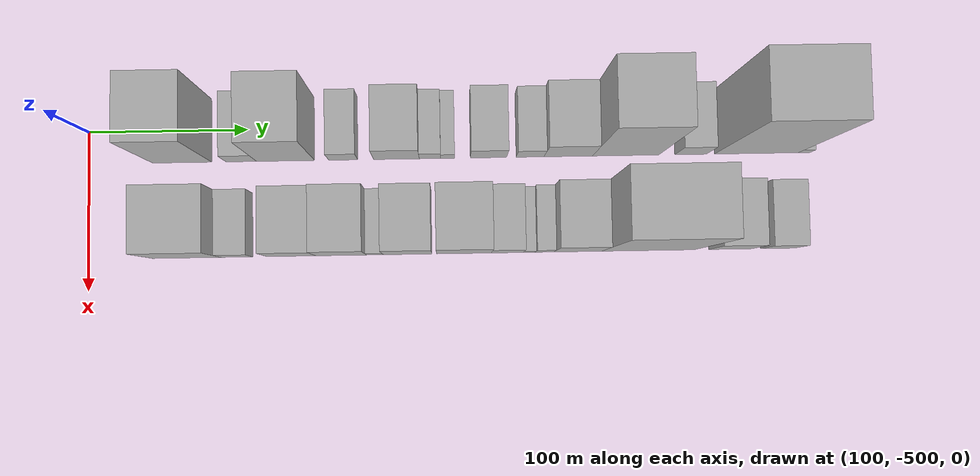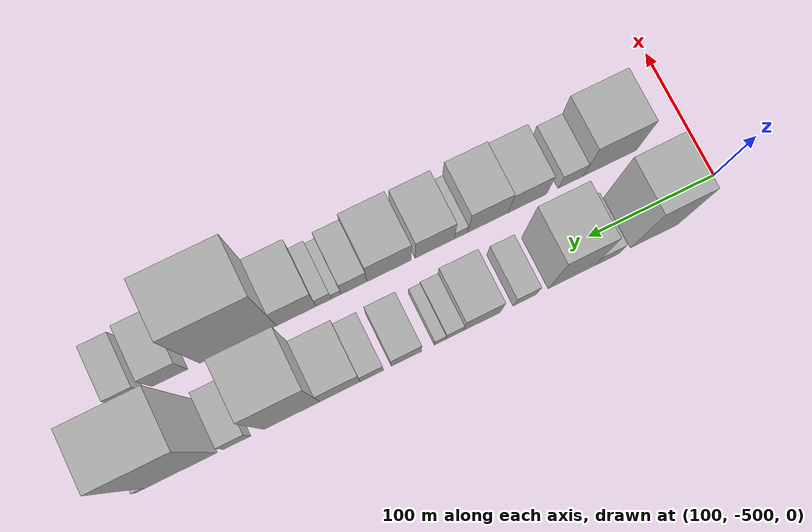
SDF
<sdf version="1.6">
 <world name="default">
  <model name="building_1">
   <static>1</static>
   <pose>100.0000 -441.4001 0 0.000000 0.000000 0.000000</pose>
   <link name="link">
    <pose>0 0 55.50 0 0 0</pose>
    <collision name="collision"><geometry><box><size>40.0000 37.1998 111.0000</size></box></geometry></collision>
    <visual name="visual">
     <cast_shadows>0</cast_shadows>
     <geometry><box><size>40.0000 37.1998 111.0000</size></box></geometry>
     <material>
      <script>
       <uri>model://HANNAS_wall/materials/scripts</uri>
       <uri>model://HANNAS_wall/materials/textures</uri>
       <name>vrc/HANNAS_wall</name>
      </script>
     </material>
    </visual>
   </link>
  </model>
  <model name="building_2">
   <static>1</static>
   <pose>100.0000 -404.2057 0 0.000000 0.000000 0.000000</pose>
   <link name="link">
    <pose>0 0 16.50 0 0 0</pose>
    <collision name="collision"><geometry><box><size>40.0000 19.1890 33.0000</size></box></geometry></collision>
    <visual name="visual">
     <cast_shadows>0</cast_shadows>
     <geometry><box><size>40.0000 19.1890 33.0000</size></box></geometry>
     <material>
      <script>
       <uri>model://HANNAS_wall/materials/scripts</uri>
       <uri>model://HANNAS_wall/materials/textures</uri>
       <name>vrc/HANNAS_wall</name>
      </script>
     </material>
    </visual>
   </link>
  </model>
  <model name="building_3">
   <static>1</static>
   <pose>100.0000 -376.3711 0 0.000000 0.000000 0.000000</pose>
   <link name="link">
    <pose>0 0 51.00 0 0 0</pose>
    <collision name="collision"><geometry><box><size>40.0000 36.4802 102.0000</size></box></geometry></collision>
    <visual name="visual">
     <cast_shadows>0</cast_shadows>
     <geometry><box><size>40.0000 36.4802 102.0000</size></box></geometry>
     <material>
      <script>
       <uri>model://HANNAS_wall/materials/scripts</uri>
       <uri>model://HANNAS_wall/materials/textures</uri>
       <name>vrc/HANNAS_wall</name>
      </script>
     </material>
    </visual>
   </link>
  </model>
  <model name="building_4">
   <static>1</static>
   <pose>100.0000 -340.0315 0 0.000000 0.000000 0.000000</pose>
   <link name="link">
    <pose>0 0 16.50 0 0 0</pose>
    <collision name="collision"><geometry><box><size>40.0000 18.1991 33.0000</size></box></geometry></collision>
    <visual name="visual">
     <cast_shadows>0</cast_shadows>
     <geometry><box><size>40.0000 18.1991 33.0000</size></box></geometry>
     <material>
      <script>
       <uri>model://HANNAS_wall/materials/scripts</uri>
       <uri>model://HANNAS_wall/materials/textures</uri>
       <name>vrc/HANNAS_wall</name>
      </script>
     </material>
    </visual>
   </link>
  </model>
  <model name="building_5">
   <static>1</static>
   <pose>100.0000 -306.6092 0 0.000000 0.000000 0.000000</pose>
   <link name="link">
    <pose>0 0 24.00 0 0 0</pose>
    <collision name="collision"><geometry><box><size>40.0000 28.6457 48.0000</size></box></geometry></collision>
    <visual name="visual">
     <cast_shadows>0</cast_shadows>
     <geometry><box><size>40.0000 28.6457 48.0000</size></box></geometry>
     <material>
      <script>
       <uri>model://HANNAS_wall/materials/scripts</uri>
       <uri>model://HANNAS_wall/materials/textures</uri>
       <name>vrc/HANNAS_wall</name>
      </script>
     </material>
    </visual>
   </link>
  </model>
  <model name="building_6">
   <static>1</static>
   <pose>100.0000 -285.5846 0 0.000000 0.000000 0.000000</pose>
   <link name="link">
    <pose>0 0 13.50 0 0 0</pose>
    <collision name="collision"><geometry><box><size>40.0000 13.4035 27.0000</size></box></geometry></collision>
    <visual name="visual">
     <cast_shadows>0</cast_shadows>
     <geometry><box><size>40.0000 13.4035 27.0000</size></box></geometry>
     <material>
      <script>
       <uri>model://HANNAS_wall/materials/scripts</uri>
       <uri>model://HANNAS_wall/materials/textures</uri>
       <name>vrc/HANNAS_wall</name>
      </script>
     </material>
    </visual>
   </link>
  </model>
  <model name="building_7">
   <static>1</static>
   <pose>100.0000 -274.5403 0 0.000000 0.000000 0.000000</pose>
   <link name="link">
    <pose>0 0 10.50 0 0 0</pose>
    <collision name="collision"><geometry><box><size>40.0000 8.6851 21.0000</size></box></geometry></collision>
    <visual name="visual">
     <cast_shadows>0</cast_shadows>
     <geometry><box><size>40.0000 8.6851 21.0000</size></box></geometry>
     <material>
      <script>
       <uri>model://HANNAS_wall/materials/scripts</uri>
       <uri>model://HANNAS_wall/materials/textures</uri>
       <name>vrc/HANNAS_wall</name>
      </script>
     </material>
    </visual>
   </link>
  </model>
  <model name="building_8">
   <static>1</static>
   <pose>100.0000 -248.8001 0 0.000000 0.000000 0.000000</pose>
   <link name="link">
    <pose>0 0 19.50 0 0 0</pose>
    <collision name="collision"><geometry><box><size>40.0000 22.7953 39.0000</size></box></geometry></collision>
    <visual name="visual">
     <cast_shadows>0</cast_shadows>
     <geometry><box><size>40.0000 22.7953 39.0000</size></box></geometry>
     <material>
      <script>
       <uri>model://HANNAS_wall/materials/scripts</uri>
       <uri>model://HANNAS_wall/materials/textures</uri>
       <name>vrc/HANNAS_wall</name>
      </script>
     </material>
    </visual>
   </link>
  </model>
  <model name="building_9">
   <static>1</static>
   <pose>100.0000 -222.6731 0 0.000000 0.000000 0.000000</pose>
   <link name="link">
    <pose>0 0 16.50 0 0 0</pose>
    <collision name="collision"><geometry><box><size>40.0000 17.4588 33.0000</size></box></geometry></collision>
    <visual name="visual">
     <cast_shadows>0</cast_shadows>
     <geometry><box><size>40.0000 17.4588 33.0000</size></box></geometry>
     <material>
      <script>
       <uri>model://HANNAS_wall/materials/scripts</uri>
       <uri>model://HANNAS_wall/materials/textures</uri>
       <name>vrc/HANNAS_wall</name>
      </script>
     </material>
    </visual>
   </link>
  </model>
  <model name="building_10">
   <static>1</static>
   <pose>100.0000 -198.6619 0 0.000000 0.000000 0.000000</pose>
   <link name="link">
    <pose>0 0 27.00 0 0 0</pose>
    <collision name="collision"><geometry><box><size>40.0000 30.5637 54.0000</size></box></geometry></collision>
    <visual name="visual">
     <cast_shadows>0</cast_shadows>
     <geometry><box><size>40.0000 30.5637 54.0000</size></box></geometry>
     <material>
      <script>
       <uri>model://HANNAS_wall/materials/scripts</uri>
       <uri>model://HANNAS_wall/materials/textures</uri>
       <name>vrc/HANNAS_wall</name>
      </script>
     </material>
    </visual>
   </link>
  </model>
  <model name="building_11">
   <static>1</static>
   <pose>100.0000 -162.4449 0 0.000000 0.000000 0.000000</pose>
   <link name="link">
    <pose>0 0 69.00 0 0 0</pose>
    <collision name="collision"><geometry><box><size>40.0000 41.8702 138.0000</size></box></geometry></collision>
    <visual name="visual">
     <cast_shadows>0</cast_shadows>
     <geometry><box><size>40.0000 41.8702 138.0000</size></box></geometry>
     <material>
      <script>
       <uri>model://HANNAS_wall/materials/scripts</uri>
       <uri>model://HANNAS_wall/materials/textures</uri>
       <name>vrc/HANNAS_wall</name>
      </script>
     </material>
    </visual>
   </link>
  </model>
  <model name="building_12">
   <static>1</static>
   <pose>100.0000 -121.5482 0 0.000000 0.000000 0.000000</pose>
   <link name="link">
    <pose>0 0 19.50 0 0 0</pose>
    <collision name="collision"><geometry><box><size>40.0000 19.9233 39.0000</size></box></geometry></collision>
    <visual name="visual">
     <cast_shadows>0</cast_shadows>
     <geometry><box><size>40.0000 19.9233 39.0000</size></box></geometry>
     <material>
      <script>
       <uri>model://HANNAS_wall/materials/scripts</uri>
       <uri>model://HANNAS_wall/materials/textures</uri>
       <name>vrc/HANNAS_wall</name>
      </script>
     </material>
    </visual>
   </link>
  </model>
  <model name="building_13">
   <static>1</static>
   <pose>100.0000 -80.1725 0 0.000000 0.000000 0.000000</pose>
   <link name="link">
    <pose>0 0 78.00 0 0 0</pose>
    <collision name="collision"><geometry><box><size>40.0000 52.8280 156.0000</size></box></geometry></collision>
    <visual name="visual">
     <cast_shadows>0</cast_shadows>
     <geometry><box><size>40.0000 52.8280 156.0000</size></box></geometry>
     <material>
      <script>
       <uri>model://HANNAS_wall/materials/scripts</uri>
       <uri>model://HANNAS_wall/materials/textures</uri>
       <name>vrc/HANNAS_wall</name>
      </script>
     </material>
    </visual>
   </link>
  </model>
  <model name="building_14">
   <static>1</static>
   <pose>100.0000 -50.0257 0 0.000000 0.000000 0.000000</pose>
   <link name="link">
    <pose>0 0 7.50 0 0 0</pose>
    <collision name="collision"><geometry><box><size>40.0000 7.4655 15.0000</size></box></geometry></collision>
    <visual name="visual">
     <cast_shadows>0</cast_shadows>
     <geometry><box><size>40.0000 7.4655 15.0000</size></box></geometry>
     <material>
      <script>
       <uri>model://HANNAS_wall/materials/scripts</uri>
       <uri>model://HANNAS_wall/materials/textures</uri>
       <name>vrc/HANNAS_wall</name>
      </script>
     </material>
    </visual>
   </link>
  </model>
  <model name="building_27">
   <static>1</static>
   <pose>160.0000 -438.4941 0 0.000000 0.000000 0.000000</pose>
   <link name="link">
    <pose>0 0 36.00 0 0 0</pose>
    <collision name="collision"><geometry><box><size>40.0000 43.0119 72.0000</size></box></geometry></collision>
    <visual name="visual">
     <cast_shadows>0</cast_shadows>
     <geometry><box><size>40.0000 43.0119 72.0000</size></box></geometry>
     <material>
      <script>
       <uri>model://HANNAS_wall/materials/scripts</uri>
       <uri>model://HANNAS_wall/materials/textures</uri>
       <name>vrc/HANNAS_wall</name>
      </script>
     </material>
    </visual>
   </link>
  </model>
  <model name="building_28">
   <static>1</static>
   <pose>160.0000 -407.1371 0 0.000000 0.000000 0.000000</pose>
   <link name="link">
    <pose>0 0 16.50 0 0 0</pose>
    <collision name="collision"><geometry><box><size>40.0000 19.7021 33.0000</size></box></geometry></collision>
    <visual name="visual">
     <cast_shadows>0</cast_shadows>
     <geometry><box><size>40.0000 19.7021 33.0000</size></box></geometry>
     <material>
      <script>
       <uri>model://HANNAS_wall/materials/scripts</uri>
       <uri>model://HANNAS_wall/materials/textures</uri>
       <name>vrc/HANNAS_wall</name>
      </script>
     </material>
    </visual>
   </link>
  </model>
  <model name="building_29">
   <static>1</static>
   <pose>160.0000 -373.0233 0 0.000000 0.000000 0.000000</pose>
   <link name="link">
    <pose>0 0 25.50 0 0 0</pose>
    <collision name="collision"><geometry><box><size>40.0000 30.5255 51.0000</size></box></geometry></collision>
    <visual name="visual">
     <cast_shadows>0</cast_shadows>
     <geometry><box><size>40.0000 30.5255 51.0000</size></box></geometry>
     <material>
      <script>
       <uri>model://HANNAS_wall/materials/scripts</uri>
       <uri>model://HANNAS_wall/materials/textures</uri>
       <name>vrc/HANNAS_wall</name>
      </script>
     </material>
    </visual>
   </link>
  </model>
  <model name="building_30">
   <static>1</static>
   <pose>160.0000 -341.8658 0 0.000000 0.000000 0.000000</pose>
   <link name="link">
    <pose>0 0 28.50 0 0 0</pose>
    <collision name="collision"><geometry><box><size>40.0000 31.7896 57.0000</size></box></geometry></collision>
    <visual name="visual">
     <cast_shadows>0</cast_shadows>
     <geometry><box><size>40.0000 31.7896 57.0000</size></box></geometry>
     <material>
      <script>
       <uri>model://HANNAS_wall/materials/scripts</uri>
       <uri>model://HANNAS_wall/materials/textures</uri>
       <name>vrc/HANNAS_wall</name>
      </script>
     </material>
    </visual>
   </link>
  </model>
  <model name="building_31">
   <static>1</static>
   <pose>160.0000 -320.7440 0 0.000000 0.000000 0.000000</pose>
   <link name="link">
    <pose>0 0 10.50 0 0 0</pose>
    <collision name="collision"><geometry><box><size>40.0000 10.4540 21.0000</size></box></geometry></collision>
    <visual name="visual">
     <cast_shadows>0</cast_shadows>
     <geometry><box><size>40.0000 10.4540 21.0000</size></box></geometry>
     <material>
      <script>
       <uri>model://HANNAS_wall/materials/scripts</uri>
       <uri>model://HANNAS_wall/materials/textures</uri>
       <name>vrc/HANNAS_wall</name>
      </script>
     </material>
    </visual>
   </link>
  </model>
  <model name="building_32">
   <static>1</static>
   <pose>160.0000 -300.3729 0 0.000000 0.000000 0.000000</pose>
   <link name="link">
    <pose>0 0 27.00 0 0 0</pose>
    <collision name="collision"><geometry><box><size>40.0000 30.2881 54.0000</size></box></geometry></collision>
    <visual name="visual">
     <cast_shadows>0</cast_shadows>
     <geometry><box><size>40.0000 30.2881 54.0000</size></box></geometry>
     <material>
      <script>
       <uri>model://HANNAS_wall/materials/scripts</uri>
       <uri>model://HANNAS_wall/materials/textures</uri>
       <name>vrc/HANNAS_wall</name>
      </script>
     </material>
    </visual>
   </link>
  </model>
  <model name="building_33">
   <static>1</static>
   <pose>160.0000 -265.1818 0 0.000000 0.000000 0.000000</pose>
   <link name="link">
    <pose>0 0 28.50 0 0 0</pose>
    <collision name="collision"><geometry><box><size>40.0000 34.0942 57.0000</size></box></geometry></collision>
    <visual name="visual">
     <cast_shadows>0</cast_shadows>
     <geometry><box><size>40.0000 34.0942 57.0000</size></box></geometry>
     <material>
      <script>
       <uri>model://HANNAS_wall/materials/scripts</uri>
       <uri>model://HANNAS_wall/materials/textures</uri>
       <name>vrc/HANNAS_wall</name>
      </script>
     </material>
    </visual>
   </link>
  </model>
  <model name="building_34">
   <static>1</static>
   <pose>160.0000 -238.2033 0 0.000000 0.000000 0.000000</pose>
   <link name="link">
    <pose>0 0 19.50 0 0 0</pose>
    <collision name="collision"><geometry><box><size>40.0000 19.8627 39.0000</size></box></geometry></collision>
    <visual name="visual">
     <cast_shadows>0</cast_shadows>
     <geometry><box><size>40.0000 19.8627 39.0000</size></box></geometry>
     <material>
      <script>
       <uri>model://HANNAS_wall/materials/scripts</uri>
       <uri>model://HANNAS_wall/materials/textures</uri>
       <name>vrc/HANNAS_wall</name>
      </script>
     </material>
    </visual>
   </link>
  </model>
  <model name="building_35">
   <static>1</static>
   <pose>160.0000 -224.5361 0 0.000000 0.000000 0.000000</pose>
   <link name="link">
    <pose>0 0 9.00 0 0 0</pose>
    <collision name="collision"><geometry><box><size>40.0000 7.4718 18.0000</size></box></geometry></collision>
    <visual name="visual">
     <cast_shadows>0</cast_shadows>
     <geometry><box><size>40.0000 7.4718 18.0000</size></box></geometry>
     <material>
      <script>
       <uri>model://HANNAS_wall/materials/scripts</uri>
       <uri>model://HANNAS_wall/materials/textures</uri>
       <name>vrc/HANNAS_wall</name>
      </script>
     </material>
    </visual>
   </link>
  </model>
  <model name="building_36">
   <static>1</static>
   <pose>160.0000 -214.9750 0 0.000000 0.000000 0.000000</pose>
   <link name="link">
    <pose>0 0 13.50 0 0 0</pose>
    <collision name="collision"><geometry><box><size>40.0000 11.6504 27.0000</size></box></geometry></collision>
    <visual name="visual">
     <cast_shadows>0</cast_shadows>
     <geometry><box><size>40.0000 11.6504 27.0000</size></box></geometry>
     <material>
      <script>
       <uri>model://HANNAS_wall/materials/scripts</uri>
       <uri>model://HANNAS_wall/materials/textures</uri>
       <name>vrc/HANNAS_wall</name>
      </script>
     </material>
    </visual>
   </link>
  </model>
  <model name="building_37">
   <static>1</static>
   <pose>160.0000 -194.1229 0 0.000000 0.000000 0.000000</pose>
   <link name="link">
    <pose>0 0 30.00 0 0 0</pose>
    <collision name="collision"><geometry><box><size>40.0000 30.0536 60.0000</size></box></geometry></collision>
    <visual name="visual">
     <cast_shadows>0</cast_shadows>
     <geometry><box><size>40.0000 30.0536 60.0000</size></box></geometry>
     <material>
      <script>
       <uri>model://HANNAS_wall/materials/scripts</uri>
       <uri>model://HANNAS_wall/materials/textures</uri>
       <name>vrc/HANNAS_wall</name>
      </script>
     </material>
    </visual>
   </link>
  </model>
  <model name="building_38">
   <static>1</static>
   <pose>160.0000 -150.0667 0 0.000000 0.000000 0.000000</pose>
   <link name="link">
    <pose>0 0 73.50 0 0 0</pose>
    <collision name="collision"><geometry><box><size>40.0000 58.0588 147.0000</size></box></geometry></collision>
    <visual name="visual">
     <cast_shadows>0</cast_shadows>
     <geometry><box><size>40.0000 58.0588 147.0000</size></box></geometry>
     <material>
      <script>
       <uri>model://HANNAS_wall/materials/scripts</uri>
       <uri>model://HANNAS_wall/materials/textures</uri>
       <name>vrc/HANNAS_wall</name>
      </script>
     </material>
    </visual>
   </link>
  </model>
  <model name="building_39">
   <static>1</static>
   <pose>160.0000 -98.7298 0 0.000000 0.000000 0.000000</pose>
   <link name="link">
    <pose>0 0 25.50 0 0 0</pose>
    <collision name="collision"><geometry><box><size>40.0000 26.6151 51.0000</size></box></geometry></collision>
    <visual name="visual">
     <cast_shadows>0</cast_shadows>
     <geometry><box><size>40.0000 26.6151 51.0000</size></box></geometry>
     <material>
      <script>
       <uri>model://HANNAS_wall/materials/scripts</uri>
       <uri>model://HANNAS_wall/materials/textures</uri>
       <name>vrc/HANNAS_wall</name>
      </script>
     </material>
    </visual>
   </link>
  </model>
  <model name="building_40">
   <static>1</static>
   <pose>160.0000 -68.7859 0 0.000000 0.000000 0.000000</pose>
   <link name="link">
    <pose>0 0 19.50 0 0 0</pose>
    <collision name="collision"><geometry><box><size>40.0000 21.2727 39.0000</size></box></geometry></collision>
    <visual name="visual">
     <cast_shadows>0</cast_shadows>
     <geometry><box><size>40.0000 21.2727 39.0000</size></box></geometry>
     <material>
      <script>
       <uri>model://HANNAS_wall/materials/scripts</uri>
       <uri>model://HANNAS_wall/materials/textures</uri>
       <name>vrc/HANNAS_wall</name>
      </script>
     </material>
    </visual>
   </link>
  </model>
 </world>
</sdf>
